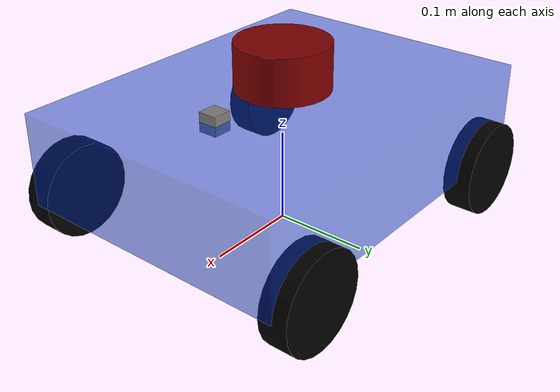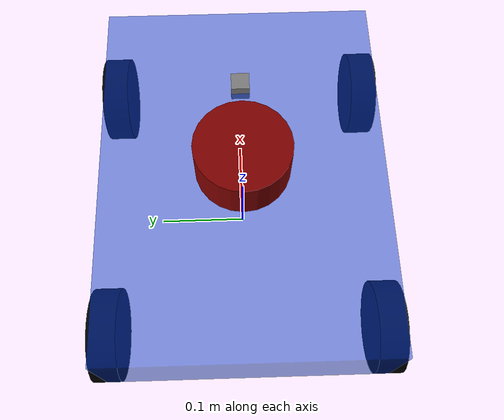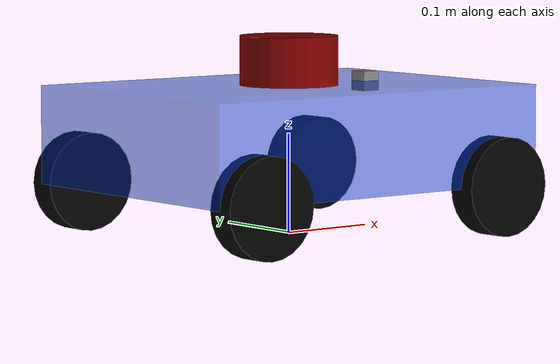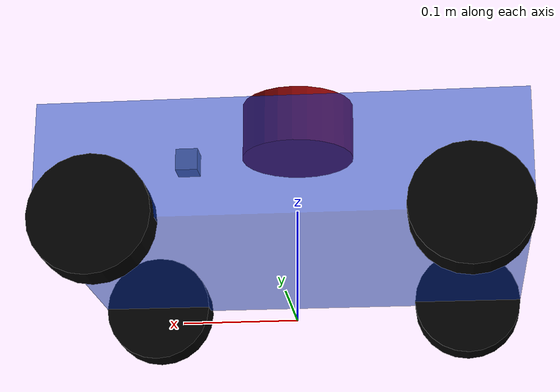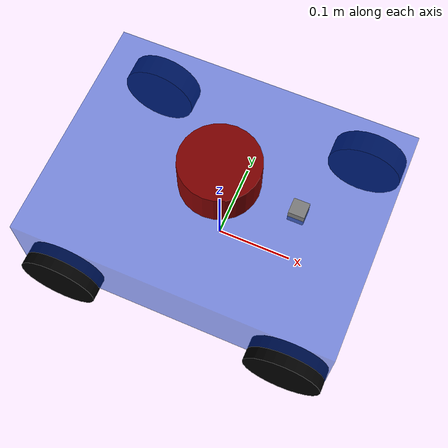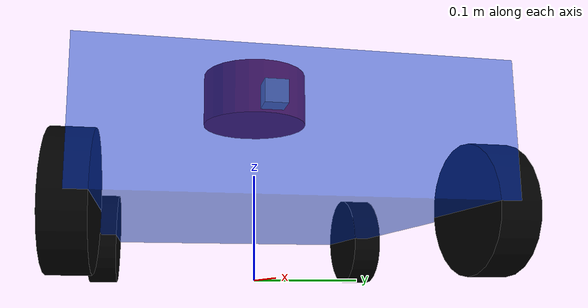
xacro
<?xml version="1.0" encoding="UTF-8"?>
<robot name="robot_car_mecanum" xmlns:xacro="http://www.ros.org/wiki/xacro">
  <!-- XML声明定义了文档使用的XML版本和UTF-8字符编码[1,3](@ref) -->

  <!-- 参数使用仿真 -->
  <xacro:arg name='use_gazebo' default='false'/>

  <!-- 包含模型 -->
  <xacro:include filename="$(find robot_desc)/urdf/four_wheel_chassis.xacro"/>

  <xacro:if value='$(arg use_gazebo)'>
    <gazebo>
      <plugin filename="gz_ros2_control-system" name="gz_ros2_control::GazeboSimROS2ControlPlugin">
        <parameters>$(find robot_car_mecanum)/config/controllers.yaml</parameters>
      </plugin>
    </gazebo>
  </xacro:if>

  <ros2_control name="mecanum_wheels_chassis" type="system">
    <hardware>
      <xacro:if value="$(arg use_gazebo)">
        <plugin>gz_ros2_control/GazeboSimSystem</plugin>
      </xacro:if>
      <xacro:unless value="$(arg use_gazebo)">
        <plugin>four_wheel_chassis_hw/FourWheelChassisHW</plugin>
      </xacro:unless>
    </hardware>

    <joint name="left_front_wheel_joint">
      <command_interface name="velocity"/>
      <state_interface name="position"/>
      <state_interface name="velocity"/>
    </joint>

    <joint name="right_front_wheel_joint">
      <command_interface name="velocity"/>
      <state_interface name="position"/>
      <state_interface name="velocity"/>
    </joint>

    <joint name="left_rear_wheel_joint">
      <command_interface name="velocity"/>
      <state_interface name="position"/>
      <state_interface name="velocity"/>
    </joint>

    <joint name="right_rear_wheel_joint">
      <command_interface name="velocity"/>
      <state_interface name="position"/>
      <state_interface name="velocity"/>
    </joint>
  </ros2_control>

  <ros2_control name="IMU" type="sensor">
    <hardware>
      <plugin>mpu6050_hw/MPU6050HW</plugin>
    </hardware>

    <joint name="imu_joint">
      <state_interface name="orientation.x"/>
      <state_interface name="orientation.y"/>
      <state_interface name="orientation.z"/>
      <state_interface name="orientation.w"/>
      <state_interface name="angular_velocity.x"/>
      <state_interface name="angular_velocity.y"/>
      <state_interface name="angular_velocity.z"/>
      <state_interface name="linear_acceleration.x"/>
      <state_interface name="linear_acceleration.y"/>
      <state_interface name="linear_acceleration.z"/>
    </joint>
  </ros2_control>

</robot>

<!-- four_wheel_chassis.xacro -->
<robot name="four_wheel_chassis" xmlns:xacro="http://www.ros.org/wiki/xacro">
  <!-- ###############################
       属性（常量）定义
  ############################### -->

  <!-- 数学常量 -->
  <xacro:property name="PI" value="3.1415926535897931" />

  <!-- 底盘几何属性 -->
  <xacro:property name="base_length" value="0.4" />  <!-- 底盘长度 (X方向) -->
  <xacro:property name="base_width" value="0.3" />   <!-- 底盘宽度 (Y方向) -->
  <xacro:property name="base_height" value="0.1" />  <!-- 底盘高度 (Z方向) -->
  <xacro:property name="base_mass" value="2.0" />    <!-- 底盘质量 (kg) -->

  <!-- 车轮几何属性 -->
  <xacro:property name="wheel_radius" value="0.05" /> <!-- 车轮半径 -->
  <xacro:property name="wheel_length" value="0.03" />  <!-- 车轮厚度 -->
  <xacro:property name="wheel_mass" value="0.5" />    <!-- 车轮质量 (kg) -->

  <!-- 车轮安装位置 (相对于底盘中心) -->
  <xacro:property name="wheel_x" value="${base_length/2 - 0.05}" /> <!-- 距离中心的X方向偏移 -->
  <xacro:property name="wheel_y" value="${base_width/2}" />        <!-- 距离中心的Y方向偏移 -->
  <xacro:property name="wheel_z" value="-${base_height/2}" />       <!-- Z方向安装高度 -->

  <!-- 颜色定义 -->
  <xacro:property name="base_color" value="0 0.2 0.8 0.5" /> <!-- 底盘颜色 (蓝色) -->
  <xacro:property name="wheel_color" value="0 0 0 1.0" />     <!-- 车轮颜色 (黑色) -->

  <!-- ###############################
       宏定义
  ############################### -->

  <!-- 定义惯性矩的宏，简化惯性参数设置 -->
  <xacro:macro name="default_inertial" params="mass">
    <inertial>
      <mass value="${mass}" />
      <inertia ixx="1.0" ixy="0.0" ixz="0.0"
               iyy="1.0" iyz="0.0"
               izz="1.0" />
    </inertial>
  </xacro:macro>

  <!-- 定义车轮的宏 -->
  <!-- 参数说明:
       name: 车轮的唯一标识 (如 left_front, right_rear)
       xyz: 车轮的安装位置 (相对于父连杆)
       rpy: 车轮的安装朝向 (默认为0, 使用cylinder默认朝向需要绕X轴旋转90度)
  -->
  <xacro:macro name="create_wheel" params="name xyz rpy:='0 0 0'">
    <link name="${name}_wheel">
      <visual>
        <geometry>
          <cylinder radius="${wheel_radius}" length="${wheel_length}" />
        </geometry>
        <origin xyz="0 0 0" rpy="${PI/2} 0 0" /> <!-- 旋转cylinder使其Z轴朝前 -->
        <material name="black">
          <color rgba="${wheel_color}" />
        </material>
      </visual>
      <collision>
        <geometry>
          <cylinder radius="${wheel_radius}" length="${wheel_length}" />
        </geometry>
        <origin xyz="0 0 0" rpy="${PI/2} 0 0" />
      </collision>
      <xacro:default_inertial mass="${wheel_mass}" />
    </link>

    <joint name="${name}_wheel_joint" type="continuous">
      <parent link="base_link" />
      <child link="${name}_wheel" />
      <origin xyz="${xyz}" rpy="${rpy}" />
      <axis xyz="0 1 0" /> <!-- 旋转轴为Y轴，适用于差速驱动 -->
    </joint>
  </xacro:macro>

  <!-- ###############################
       机器人模型主体
  ############################### -->

  <link name="base_footprint"/>

  <joint name="base_to_footprint" type="fixed">
    <parent link="base_footprint" />
    <child link="base_link" />
    <origin xyz="0 0 ${base_height}" rpy="0 0 0" />
  </joint>

  <!-- 机器人底盘主体 -->
  <link name="base_link">
    <visual>
      <geometry>
        <box size="${base_length} ${base_width} ${base_height}" />
      </geometry>
      <material name="blue">
        <color rgba="${base_color}" />
      </material>
    </visual>
    <collision>
      <geometry>
        <box size="${base_length} ${base_width} ${base_height}" />
      </geometry>
    </collision>
    <xacro:default_inertial mass="${base_mass}" />
  </link>

  <!-- 使用宏创建四个车轮 -->
  <xacro:create_wheel name="left_front" xyz="${wheel_x} ${wheel_y} ${wheel_z}" />
  <xacro:create_wheel name="right_front" xyz="${wheel_x} -${wheel_y} ${wheel_z}" />
  <xacro:create_wheel name="left_rear" xyz="-${wheel_x} ${wheel_y} ${wheel_z}" />
  <xacro:create_wheel name="right_rear" xyz="-${wheel_x} -${wheel_y} ${wheel_z}" />

  <link name="laser_frame">
    <visual>
      <geometry>
        <cylinder radius="0.05" length="0.05" />
      </geometry>
      <origin xyz="0 0 0.025" rpy="0 0 0" />
      <material name="red">
        <color rgba="0.5 0 0 1.0" />
      </material>
    </visual>
    <collision>
      <geometry>
        <cylinder radius="0.05" length="0.05" />
      </geometry>
      <origin xyz="0 0 0.025" rpy="0 0 0" />
    </collision>
    <xacro:default_inertial mass="0.1" />
  </link>

  <joint name="laser_joint" type="fixed">
    <parent link="base_link" />
    <child link="laser_frame" />
    <origin xyz="0 0 0.05" rpy="0 0 0" />
  </joint>

  <link name="imu">
    <visual>
      <geometry>
        <box size="0.02 0.02 0.02"/>
      </geometry>
      <material name="gray">
        <color rgba="0.5 0.5 0.5 1.0"/>
      </material>
    </visual>
    <collision>
      <geometry>
        <box size="0.02 0.02 0.02"/>
      </geometry>
    </collision>
  </link>

  <joint name="imu_joint" type="continuous">
    <parent link="base_link"/>
    <child link="imu"/>
    <origin xyz="0.1 0.0 0.05" rpy="0 0 0"/>
  </joint>

</robot>
